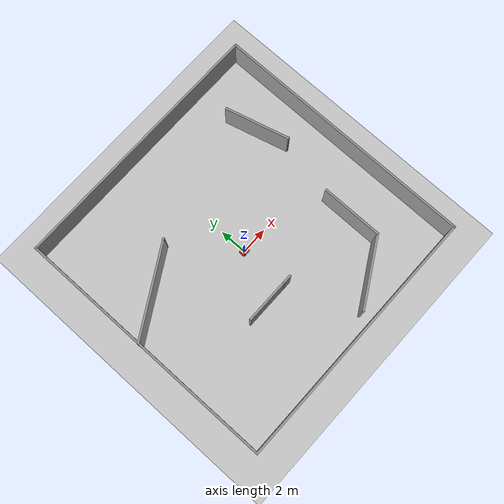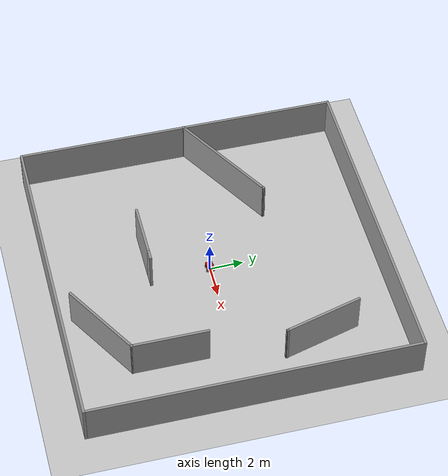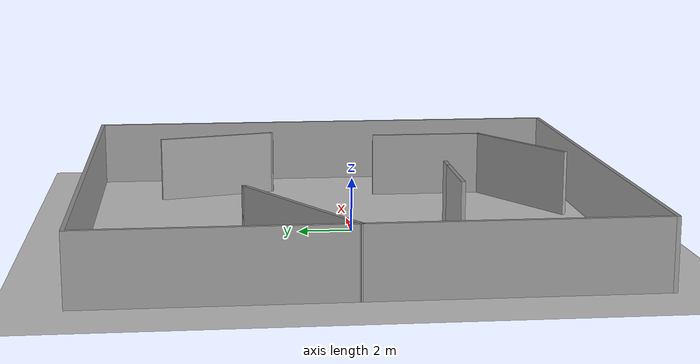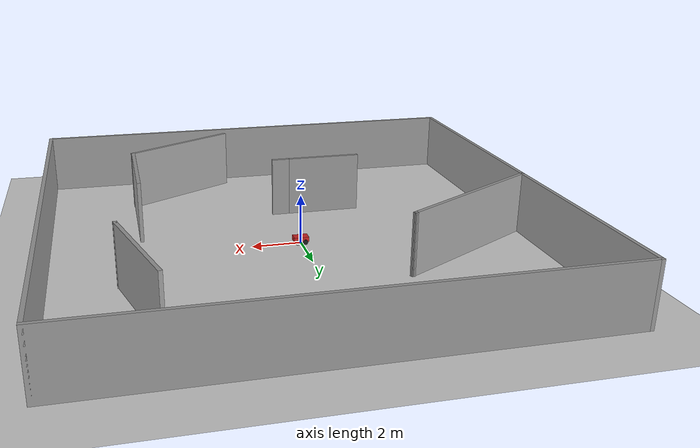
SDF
<sdf version="1.7">
 <world name="default">
  <light name="sun" type="directional">
   <pose>0 0 10 0 -0 0</pose>
   <diffuse>0.8 0.8 0.8 1</diffuse>
   <specular>0.2 0.2 0.2 1</specular>
   <attenuation>
    <range>1000</range>
    <constant>0.9</constant>
    <linear>0.01</linear>
    <quadratic>0.001</quadratic>
   </attenuation>
   <direction>-0.5 0.1 -0.9</direction>
   <spot><inner_angle>0</inner_angle><outer_angle>0</outer_angle><falloff>0</falloff></spot>
  </light>
  <model name="ground_plane">
   <static>1</static>
   <link name="link">
    <collision name="collision">
     <geometry><plane><normal>0 0 1</normal><size>100 100</size></plane></geometry>
     <surface><friction><ode><mu>100</mu><mu2>50</mu2></ode></friction></surface>
    </collision>
    <visual name="visual">
     <cast_shadows>0</cast_shadows>
     <geometry><plane><normal>0 0 1</normal><size>100 100</size></plane></geometry>
     <material>
      <script><uri>file://media/materials/scripts/gazebo.material</uri><name>Gazebo/Grey</name></script>
     </material>
    </visual>
   </link>
  </model>
  <gravity>0 0 -9.8</gravity>
  <magnetic_field>6e-06 2.3e-05 -4.2e-05</magnetic_field>
  <atmosphere type="adiabatic"/>
  <physics type="ode">
   <max_step_size>0.001</max_step_size>
   <real_time_factor>1</real_time_factor>
   <real_time_update_rate>1000</real_time_update_rate>
  </physics>
  <scene><ambient>0.4 0.4 0.4 1</ambient><background>0.7 0.7 0.7 1</background><shadows>1</shadows></scene>
  <audio><device>default</device></audio>
  <spherical_coordinates>
   <surface_model>EARTH_WGS84</surface_model>
   <latitude_deg>0</latitude_deg>
   <longitude_deg>0</longitude_deg>
   <elevation>0</elevation>
   <heading_deg>0</heading_deg>
  </spherical_coordinates>
  <model name="my_robot">
   <link name="base_footprint">
    <inertial>
     <pose>0.019773 0 0.218939 0 -0 0</pose>
     <mass>6.6</mass>
     <inertia>
      <ixx>0.719029</ixx>
      <ixy>0</ixy>
      <ixz>0.0174716</ixz>
      <iyy>0.945814</iyy>
      <iyz>0</iyz>
      <izz>0.36341</izz>
     </inertia>
    </inertial>
    <collision name="base_footprint_fixed_joint_lump__base_link_collision">
     <pose>0 0 0.2 0 -0 0</pose>
     <geometry><box><size>0.6 0.4 0.2</size></box></geometry>
    </collision>
    <collision name="base_footprint_fixed_joint_lump__camera_link_collision_1">
     <pose>0.305 0 0.2 0 -0 0</pose>
     <geometry><box><size>0.01 0.1 0.05</size></box></geometry>
    </collision>
    <collision name="base_footprint_fixed_joint_lump__caster_wheel_link_collision_2">
     <pose>0.2 0 0.05 0 -0 0</pose>
     <geometry><sphere><radius>0.05</radius></sphere></geometry>
     <surface><friction><ode><mu>0.1</mu><mu2>0.1</mu2></ode></friction></surface>
    </collision>
    <collision name="base_footprint_fixed_joint_lump__lidar_link_collision_3">
     <pose>0 0 0.4 0 -0 0</pose>
     <geometry><cylinder><length>0.1</length><radius>0.05</radius></cylinder></geometry>
    </collision>
    <visual name="base_footprint_fixed_joint_lump__base_link_visual">
     <pose>0 0 0.2 0 -0 0</pose>
     <geometry><box><size>0.6 0.4 0.2</size></box></geometry>
     <material>
      <script><name>Gazebo/Red</name><uri>file://media/materials/scripts/gazebo.material</uri></script>
     </material>
    </visual>
    <visual name="base_footprint_fixed_joint_lump__camera_link_visual_1">
     <pose>0.305 0 0.2 0 -0 0</pose>
     <geometry><box><size>0.01 0.1 0.05</size></box></geometry>
     <material>
      <script><name>Gazebo/Red</name><uri>file://media/materials/scripts/gazebo.material</uri></script>
     </material>
    </visual>
    <visual name="base_footprint_fixed_joint_lump__caster_wheel_link_visual_2">
     <pose>0.2 0 0.05 0 -0 0</pose>
     <geometry><sphere><radius>0.05</radius></sphere></geometry>
     <material>
      <script><name>Gazebo/Grey</name><uri>file://media/materials/scripts/gazebo.material</uri></script>
     </material>
    </visual>
    <visual name="base_footprint_fixed_joint_lump__lidar_link_visual_3">
     <pose>0 0 0.35 0 -0 0</pose>
     <geometry><cylinder><length>0.1</length><radius>0.05</radius></cylinder></geometry>
     <material>
      <script><name>Gazebo/Blue</name><uri>file://media/materials/scripts/gazebo.material</uri></script>
     </material>
    </visual>
    <sensor name="camera_sensor" type="camera">
     <visualize>1</visualize>
     <update_rate>10</update_rate>
     <plugin name="camera_controller" filename="libgazebo_ros_camera.so">
      <frame_name>camera_link_optical</frame_name>
     </plugin>
     <pose>0.305 0 0.2 0 -0 0</pose>
     <camera>
      <horizontal_fov>1.047</horizontal_fov>
      <image><width>320</width><height>240</height></image>
      <clip><near>0.1</near><far>100</far></clip>
     </camera>
    </sensor>
    <sensor name="lidar_sensor" type="ray">
     <visualize>1</visualize>
     <update_rate>10</update_rate>
     <ray>
      <scan>
       <horizontal>
        <samples>360</samples>
        <resolution>1</resolution>
        <min_angle>-3.14159</min_angle>
        <max_angle>3.14159</max_angle>
       </horizontal>
       <vertical><samples>1</samples><min_angle>0</min_angle><max_angle>0</max_angle></vertical>
      </scan>
      <range><min>0.12</min><max>8</max><resolution>0.01</resolution></range>
      <noise><type>gaussian</type><mean>0</mean><stddev>0.01</stddev></noise>
     </ray>
     <plugin name="gazebo_ros_lidar_controller" filename="libgazebo_ros_ray_sensor.so">
      <ros><namespace>/</namespace><remapping>~/out:=scan</remapping></ros>
      <output_type>sensor_msgs/LaserScan</output_type>
      <frame_name>lidar_link</frame_name>
     </plugin>
     <pose>0 0 0.35 0 -0 0</pose>
    </sensor>
   </link>
   <joint name="base_left_wheel_joint" type="revolute">
    <pose relative_to="base_footprint">-0.15 0.225 0.1 0 -0 0</pose>
    <parent>base_footprint</parent>
    <child>left_wheel_link</child>
    <axis>
     <xyz>0 1 0</xyz>
     <limit><lower>-1e+16</lower><upper>1e+16</upper></limit>
     <dynamics><spring_reference>0</spring_reference><spring_stiffness>0</spring_stiffness></dynamics>
    </axis>
   </joint>
   <link name="left_wheel_link">
    <pose relative_to="base_left_wheel_joint">0 0 0 0 -0 0</pose>
    <inertial>
     <pose>0 0 0 1.5708 -0 0</pose>
     <mass>1</mass>
     <inertia><ixx>0.0108333</ixx><ixy>0</ixy><ixz>0</ixz><iyy>0.0108333</iyy><iyz>0</iyz><izz>0.02</izz></inertia>
    </inertial>
    <collision name="left_wheel_link_collision">
     <pose>0 0 0 1.5708 -0 0</pose>
     <geometry><cylinder><length>0.05</length><radius>0.1</radius></cylinder></geometry>
    </collision>
    <visual name="left_wheel_link_visual">
     <pose>0 0 0 1.5708 -0 0</pose>
     <geometry><cylinder><length>0.05</length><radius>0.1</radius></cylinder></geometry>
     <material>
      <script><name>Gazebo/Black</name><uri>file://media/materials/scripts/gazebo.material</uri></script>
     </material>
    </visual>
   </link>
   <joint name="base_right_wheel_joint" type="revolute">
    <pose relative_to="base_footprint">-0.15 -0.225 0.1 0 -0 0</pose>
    <parent>base_footprint</parent>
    <child>right_wheel_link</child>
    <axis>
     <xyz>0 1 0</xyz>
     <limit><lower>-1e+16</lower><upper>1e+16</upper></limit>
     <dynamics><spring_reference>0</spring_reference><spring_stiffness>0</spring_stiffness></dynamics>
    </axis>
   </joint>
   <link name="right_wheel_link">
    <pose relative_to="base_right_wheel_joint">0 0 0 0 -0 0</pose>
    <inertial>
     <pose>0 0 0 1.5708 -0 0</pose>
     <mass>1</mass>
     <inertia><ixx>0.0108333</ixx><ixy>0</ixy><ixz>0</ixz><iyy>0.0108333</iyy><iyz>0</iyz><izz>0.02</izz></inertia>
    </inertial>
    <collision name="right_wheel_link_collision">
     <pose>0 0 0 1.5708 -0 0</pose>
     <geometry><cylinder><length>0.05</length><radius>0.1</radius></cylinder></geometry>
    </collision>
    <visual name="right_wheel_link_visual">
     <pose>0 0 0 1.5708 -0 0</pose>
     <geometry><cylinder><length>0.05</length><radius>0.1</radius></cylinder></geometry>
     <material>
      <script><name>Gazebo/Black</name><uri>file://media/materials/scripts/gazebo.material</uri></script>
     </material>
    </visual>
   </link>
   <joint name="base_to_front_left_wheel_joint" type="revolute">
    <pose relative_to="base_footprint">0.15 0.225 0.1 0 -0 0</pose>
    <parent>base_footprint</parent>
    <child>front_left_wheel_link</child>
    <axis>
     <xyz>0 1 0</xyz>
     <limit><lower>-1e+16</lower><upper>1e+16</upper></limit>
     <dynamics><spring_reference>0</spring_reference><spring_stiffness>0</spring_stiffness></dynamics>
    </axis>
   </joint>
   <link name="front_left_wheel_link">
    <pose relative_to="base_to_front_left_wheel_joint">0 0 0 0 -0 0</pose>
    <inertial>
     <pose>0 0 0 1.5708 -0 0</pose>
     <mass>1</mass>
     <inertia><ixx>0.0108333</ixx><ixy>0</ixy><ixz>0</ixz><iyy>0.0108333</iyy><iyz>0</iyz><izz>0.02</izz></inertia>
    </inertial>
    <collision name="front_left_wheel_link_collision">
     <pose>0 0 0 1.5708 -0 0</pose>
     <geometry><cylinder><length>0.05</length><radius>0.1</radius></cylinder></geometry>
    </collision>
    <visual name="front_left_wheel_link_visual">
     <pose>0 0 0 1.5708 -0 0</pose>
     <geometry><cylinder><length>0.05</length><radius>0.1</radius></cylinder></geometry>
    </visual>
   </link>
   <joint name="base_to_front_right_wheel_joint" type="revolute">
    <pose relative_to="base_footprint">0.15 -0.225 0.1 0 -0 0</pose>
    <parent>base_footprint</parent>
    <child>front_right_wheel_link</child>
    <axis>
     <xyz>0 1 0</xyz>
     <limit><lower>-1e+16</lower><upper>1e+16</upper></limit>
     <dynamics><spring_reference>0</spring_reference><spring_stiffness>0</spring_stiffness></dynamics>
    </axis>
   </joint>
   <link name="front_right_wheel_link">
    <pose relative_to="base_to_front_right_wheel_joint">0 0 0 0 -0 0</pose>
    <inertial>
     <pose>0 0 0 1.5708 -0 0</pose>
     <mass>1</mass>
     <inertia><ixx>0.0108333</ixx><ixy>0</ixy><ixz>0</ixz><iyy>0.0108333</iyy><iyz>0</iyz><izz>0.02</izz></inertia>
    </inertial>
    <collision name="front_right_wheel_link_collision">
     <pose>0 0 0 1.5708 -0 0</pose>
     <geometry><cylinder><length>0.05</length><radius>0.1</radius></cylinder></geometry>
    </collision>
    <visual name="front_right_wheel_link_visual">
     <pose>0 0 0 1.5708 -0 0</pose>
     <geometry><cylinder><length>0.05</length><radius>0.1</radius></cylinder></geometry>
    </visual>
   </link>
   <plugin name="diff_drive_controller" filename="libgazebo_ros_diff_drive.so">
    <update_rate>50</update_rate>
    <left_joint>base_left_wheel_joint</left_joint>
    <right_joint>base_right_wheel_joint</right_joint>
    <wheel_separation>0.45</wheel_separation>
    <wheel_diameter>0.2</wheel_diameter>
    <publish_odom>1</publish_odom>
    <publish_odom_tf>1</publish_odom_tf>
    <publish_wheel_tf>1</publish_wheel_tf>
    <odometry_topic>odom</odometry_topic>
    <odometry_frame>odom</odometry_frame>
    <robot_base_frame>base_footprint</robot_base_frame>
   </plugin>
   <static>0</static>
   <plugin name="front_diff_drive_controller" filename="libgazebo_ros_diff_drive.so">
    <update_rate>50</update_rate>
    <left_joint>base_to_front_right_wheel_joint</left_joint>
    <right_joint>base_to_front_left_wheel_joint</right_joint>
    <wheel_separation>0.45</wheel_separation>
    <wheel_diameter>0.2</wheel_diameter>
    <publish_odom>1</publish_odom>
    <publish_odom_tf>1</publish_odom_tf>
    <publish_wheel_tf>1</publish_wheel_tf>
    <odometry_topic>odom</odometry_topic>
    <odometry_frame>odom</odometry_frame>
    <robot_base_frame>base_footprint</robot_base_frame>
   </plugin>
   <pose>0.009034 0.001171 0 0 0 -0.003219</pose>
  </model>
  <model name="my_world.world">
   <pose>0.343133 0.189462 0 0 -0 0</pose>
   <link name="Wall_0">
    <collision name="Wall_0_Collision">
     <geometry><box><size>3.25 0.15 2.5</size></box></geometry>
     <pose>0 0 1.25 0 -0 0</pose>
    </collision>
    <visual name="Wall_0_Visual">
     <pose>0 0 1.25 0 -0 0</pose>
     <geometry><box><size>3.25 0.15 2.5</size></box></geometry>
     <material>
      <script><uri>file://media/materials/scripts/gazebo.material</uri><name>Gazebo/Grey</name></script>
      <ambient>1 1 1 1</ambient>
     </material>
     <meta><layer>0</layer></meta>
    </visual>
    <pose>-2.13313 -3.76946 0 0 -0 0</pose>
   </link>
   <link name="Wall_1">
    <collision name="Wall_1_Collision">
     <geometry><box><size>0.75 0.15 2.5</size></box></geometry>
     <pose>0 0 1.25 0 -0 0</pose>
    </collision>
    <visual name="Wall_1_Visual">
     <pose>0 0 1.25 0 -0 0</pose>
     <geometry><box><size>0.75 0.15 2.5</size></box></geometry>
     <material>
      <script><uri>file://media/materials/scripts/gazebo.material</uri><name>Gazebo/Grey</name></script>
      <ambient>1 1 1 1</ambient>
     </material>
     <meta><layer>0</layer></meta>
    </visual>
    <pose>-0.283133 -3.76946 0 0 -0 0</pose>
   </link>
   <link name="Wall_10">
    <collision name="Wall_10_Collision">
     <geometry><box><size>0.15 0.15 2.5</size></box></geometry>
     <pose>0 0 1.25 0 -0 0</pose>
    </collision>
    <visual name="Wall_10_Visual">
     <pose>0 0 1.25 0 -0 0</pose>
     <geometry><box><size>0.15 0.15 2.5</size></box></geometry>
     <material>
      <script><uri>file://media/materials/scripts/gazebo.material</uri><name>Gazebo/Grey</name></script>
      <ambient>1 1 1 1</ambient>
     </material>
     <meta><layer>0</layer></meta>
    </visual>
    <pose>-3.604 3.875 0 0 -0 0</pose>
   </link>
   <link name="Wall_12">
    <collision name="Wall_12_Collision">
     <geometry><box><size>4.75 0.15 2.5</size></box></geometry>
     <pose>0 0 1.25 0 -0 0</pose>
    </collision>
    <visual name="Wall_12_Visual">
     <pose>0 0 1.25 0 -0 0</pose>
     <geometry><box><size>4.75 0.15 2.5</size></box></geometry>
     <material>
      <script><uri>file://media/materials/scripts/gazebo.material</uri><name>Gazebo/Grey</name></script>
      <ambient>1 1 1 1</ambient>
     </material>
     <meta><layer>0</layer></meta>
    </visual>
    <pose>6.33528 4.67954 0 0 -0 -1.309</pose>
   </link>
   <link name="Wall_13">
    <collision name="Wall_13_Collision">
     <geometry><box><size>0.16 0.15 2.5</size></box></geometry>
     <pose>0 0 1.25 0 -0 0</pose>
    </collision>
    <visual name="Wall_13_Visual">
     <pose>0 0 1.25 0 -0 0</pose>
     <geometry><box><size>0.16 0.15 2.5</size></box></geometry>
     <material>
      <script><uri>file://media/materials/scripts/gazebo.material</uri><name>Gazebo/Grey</name></script>
      <ambient>1 1 1 1</ambient>
     </material>
     <meta><layer>0</layer></meta>
    </visual>
    <pose>6.93557 2.45791 0 0 -0 0</pose>
   </link>
   <link name="Wall_15">
    <collision name="Wall_15_Collision">
     <geometry><box><size>4.5 0.15 2.5</size></box></geometry>
     <pose>0 0 1.25 0 -0 0</pose>
    </collision>
    <visual name="Wall_15_Visual">
     <pose>0 0 1.25 0 -0 0</pose>
     <geometry><box><size>4.5 0.15 2.5</size></box></geometry>
     <material>
      <script><uri>file://media/materials/scripts/gazebo.material</uri><name>Gazebo/Grey</name></script>
      <ambient>1 1 1 1</ambient>
     </material>
     <meta><layer>0</layer></meta>
    </visual>
    <pose>5.90182 -3.97178 0 0 -0 -1.5708</pose>
   </link>
   <link name="Wall_16">
    <collision name="Wall_16_Collision">
     <geometry><box><size>5.25 0.15 2.5</size></box></geometry>
     <pose>0 0 1.25 0 -0 0</pose>
    </collision>
    <visual name="Wall_16_Visual">
     <pose>0 0 1.25 0 -0 0</pose>
     <geometry><box><size>5.25 0.15 2.5</size></box></geometry>
     <material>
      <script><uri>file://media/materials/scripts/gazebo.material</uri><name>Gazebo/Grey</name></script>
      <ambient>1 1 1 1</ambient>
     </material>
     <meta><layer>0</layer></meta>
    </visual>
    <pose>3.69346 -7.42178 0 0 -0 -2.61799</pose>
   </link>
   <link name="Wall_3">
    <collision name="Wall_3_Collision">
     <geometry><box><size>9.25 0.15 2.5</size></box></geometry>
     <pose>0 0 1.25 0 -0 0</pose>
    </collision>
    <visual name="Wall_3_Visual">
     <pose>0 0 1.25 0 -0 0</pose>
     <geometry><box><size>9.25 0.15 2.5</size></box></geometry>
     <material>
      <script><uri>file://media/materials/scripts/gazebo.material</uri><name>Gazebo/Grey</name></script>
      <ambient>1 1 1 1</ambient>
     </material>
     <meta><layer>0</layer></meta>
    </visual>
    <pose>-9.53627 5 0 0 -0 1.5708</pose>
   </link>
   <link name="Wall_4">
    <collision name="Wall_4_Collision">
     <geometry><box><size>19.25 0.15 2.5</size></box></geometry>
     <pose>0 0 1.25 0 -0 0</pose>
    </collision>
    <visual name="Wall_4_Visual">
     <pose>0 0 1.25 0 -0 0</pose>
     <geometry><box><size>19.25 0.15 2.5</size></box></geometry>
     <material>
      <script><uri>file://media/materials/scripts/gazebo.material</uri><name>Gazebo/Grey</name></script>
      <ambient>1 1 1 1</ambient>
     </material>
     <meta><layer>0</layer></meta>
    </visual>
    <pose>0.013726 9.55 0 0 -0 0</pose>
   </link>
   <link name="Wall_5">
    <collision name="Wall_5_Collision">
     <geometry><box><size>19.25 0.15 2.5</size></box></geometry>
     <pose>0 0 1.25 0 -0 0</pose>
    </collision>
    <visual name="Wall_5_Visual">
     <pose>0 0 1.25 0 -0 0</pose>
     <geometry><box><size>19.25 0.15 2.5</size></box></geometry>
     <material>
      <script><uri>file://media/materials/scripts/gazebo.material</uri><name>Gazebo/Grey</name></script>
      <ambient>1 1 1 1</ambient>
     </material>
     <meta><layer>0</layer></meta>
    </visual>
    <pose>9.56372 -0 0 0 -0 -1.5708</pose>
   </link>
   <link name="Wall_6">
    <collision name="Wall_6_Collision">
     <geometry><box><size>19.25 0.15 2.5</size></box></geometry>
     <pose>0 0 1.25 0 -0 0</pose>
    </collision>
    <visual name="Wall_6_Visual">
     <pose>0 0 1.25 0 -0 0</pose>
     <geometry><box><size>19.25 0.15 2.5</size></box></geometry>
     <material>
      <script><uri>file://media/materials/scripts/gazebo.material</uri><name>Gazebo/Grey</name></script>
      <ambient>1 1 1 1</ambient>
     </material>
     <meta><layer>0</layer></meta>
    </visual>
    <pose>0.013726 -9.55 0 0 -0 3.14159</pose>
   </link>
   <link name="Wall_7">
    <collision name="Wall_7_Collision">
     <geometry><box><size>10.15 0.15 2.5</size></box></geometry>
     <pose>0 0 1.25 0 -0 0</pose>
    </collision>
    <visual name="Wall_7_Visual">
     <pose>0 0 1.25 0 -0 0</pose>
     <geometry><box><size>10.15 0.15 2.5</size></box></geometry>
     <material>
      <script><uri>file://media/materials/scripts/gazebo.material</uri><name>Gazebo/Grey</name></script>
      <ambient>1 1 1 1</ambient>
     </material>
     <meta><layer>0</layer></meta>
    </visual>
    <pose>-9.53627 -4.55 0 0 -0 1.5708</pose>
   </link>
   <link name="Wall_8">
    <collision name="Wall_8_Collision">
     <geometry><box><size>7 0.15 2.5</size></box></geometry>
     <pose>0 0 1.25 0 -0 0</pose>
    </collision>
    <visual name="Wall_8_Visual">
     <pose>0 0 1.25 0 -0 0</pose>
     <geometry><box><size>7 0.15 2.5</size></box></geometry>
     <material>
      <script><uri>file://media/materials/scripts/gazebo.material</uri><name>Gazebo/Grey</name></script>
      <ambient>1 1 1 1</ambient>
     </material>
     <meta><layer>0</layer></meta>
    </visual>
    <pose>-6.57014 2.1625 0 0 -0 0.523599</pose>
   </link>
   <link name="Wall_9">
    <collision name="Wall_9_Collision">
     <geometry><box><size>0.15 0.15 2.5</size></box></geometry>
     <pose>0 0 1.25 0 -0 0</pose>
    </collision>
    <visual name="Wall_9_Visual">
     <pose>0 0 1.25 0 -0 0</pose>
     <geometry><box><size>0.15 0.15 2.5</size></box></geometry>
     <material>
      <script><uri>file://media/materials/scripts/gazebo.material</uri><name>Gazebo/Grey</name></script>
      <ambient>1 1 1 1</ambient>
     </material>
     <meta><layer>0</layer></meta>
    </visual>
    <pose>-3.604 3.875 0 0 -0 0</pose>
   </link>
   <static>1</static>
  </model>
 </world>
</sdf>
